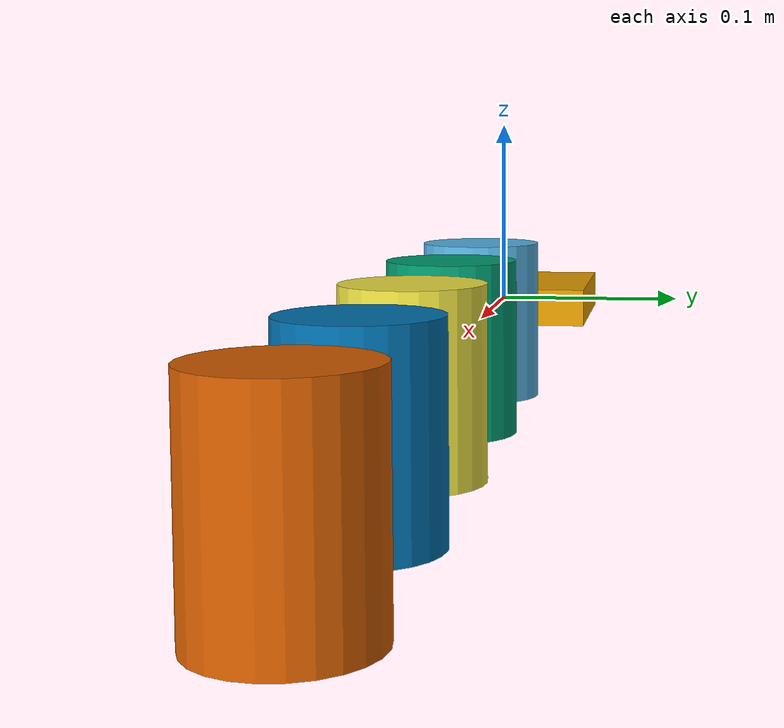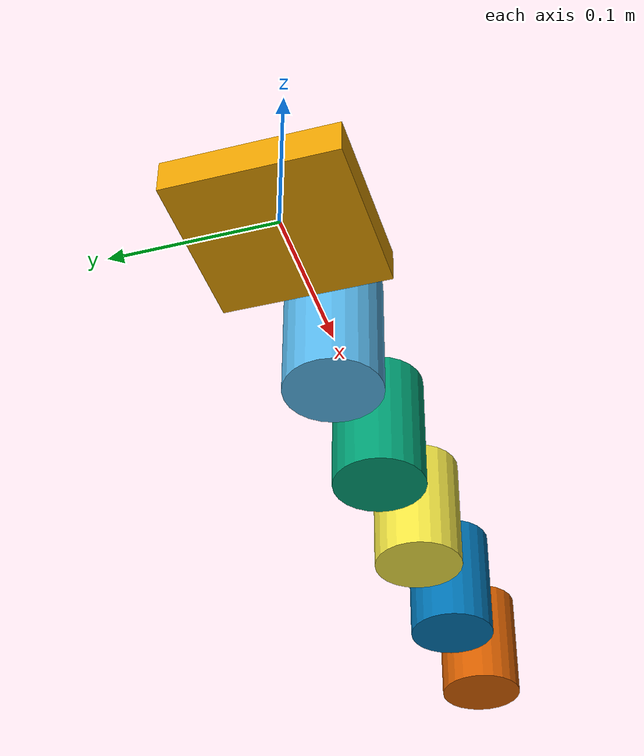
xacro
<?xml version="1.0"?>
<robot name="multi_motor_system" xmlns:xacro="http://www.ros.org/wiki/xacro">

  <xacro:arg name="num_joints"   default="5"/>
  <xacro:arg name="slave_config" default=""/>
  <xacro:arg name="master_id"    default="0"/>

  <!-- Include the ros2_control macro definitions -->
  <xacro:include filename="$(find multi_motor_control)/urdf/robot.ros2_control.xacro"/>

  <link name="base_link">
    <visual>
      <geometry><box size="0.1 0.1 0.02"/></geometry>
    </visual>
  </link>

  <xacro:macro name="dummy_joint_link" params="index">
    <link name="joint_${index}_link">
      <visual>
        <geometry><cylinder length="0.08" radius="0.03"/></geometry>
      </visual>
      <inertial>
        <mass value="0.5"/>
        <inertia ixx="1e-3" ixy="0" ixz="0" iyy="1e-3" iyz="0" izz="1e-3"/>
      </inertial>
    </link>
    <joint name="joint_${index}" type="revolute">
      <parent link="base_link"/>
      <child  link="joint_${index}_link"/>
      <origin xyz="${0.1*index} 0 0"/>
      <axis xyz="0 0 1"/>
      <limit lower="-6.283" upper="6.283" effort="100" velocity="50"/>
    </joint>
  </xacro:macro>

  <xacro:macro name="_dummy_list" params="i num">
    <xacro:if value="${i &lt;= num}">
      <xacro:dummy_joint_link index="${i}"/>
      <xacro:_dummy_list i="${i+1}" num="${num}"/>
    </xacro:if>
  </xacro:macro>
  <xacro:_dummy_list i="1" num="$(arg num_joints)"/>

  <!-- ============================================================
       Instantiate ros2_control
       ============================================================ -->
  <xacro:multi_motor_ros2_control
      name="denali_xcr_cluster"
      num_joints="$(arg num_joints)"
      slave_config="$(arg slave_config)"
      master_id="$(arg master_id)"
      control_frequency="1000"/>

</robot>
